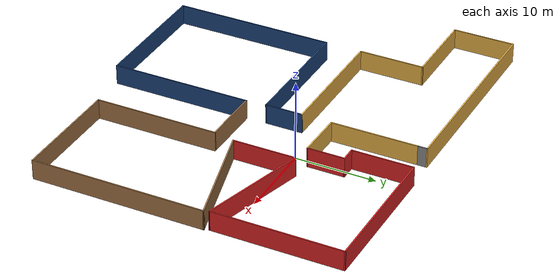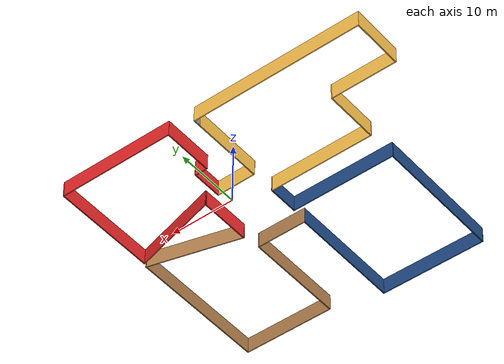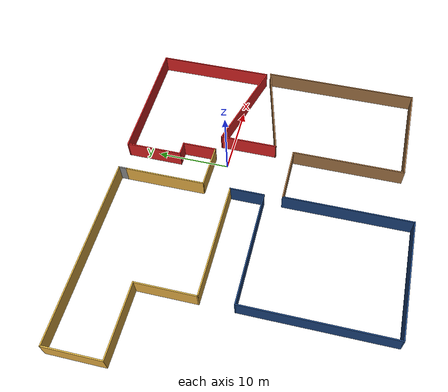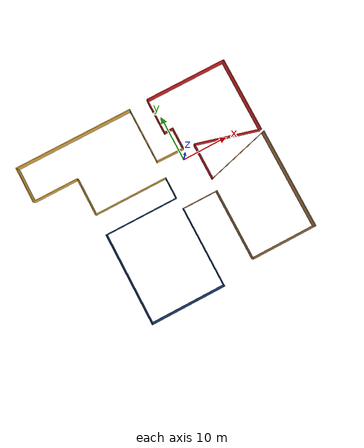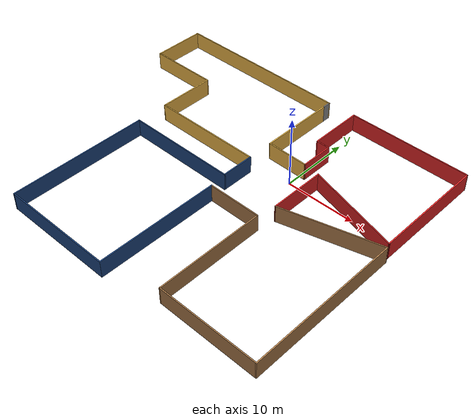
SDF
<?xml version='1.0'?>
<sdf version='1.6'>
  <model name='uav_rooms'>
    <pose frame=''>-7.00165 -6.06636 0 0 -0 0</pose>
    <link name='Wall_10'>
      <collision name='Wall_10_Collision'>
        <geometry>
          <box>
            <size>16.2501 0.15 2.5</size>
          </box>
        </geometry>
        <pose frame=''>0 0 1.25 0 -0 0</pose>
      </collision>
      <visual name='Wall_10_Visual'>
        <pose frame=''>0 0 1.25 0 -0 0</pose>
        <geometry>
          <box>
            <size>16.2501 0.15 2.5</size>
          </box>
        </geometry>
        <material>
          <script>
            <uri>file://media/materials/scripts/gazebo.material</uri>
            <name>Gazebo/Grey</name>
          </script>
          <ambient>0.12549 0.290196 0.529412 1</ambient>
        </material>
        <meta>
          <layer>0</layer>
        </meta>
      </visual>
      <pose frame=''>-5.93339 -20.1578 0 0 -0 2.3e-05</pose>
    </link>
    <link name='Wall_11'>
      <collision name='Wall_11_Collision'>
        <geometry>
          <box>
            <size>17.4996 0.15 2.5</size>
          </box>
        </geometry>
        <pose frame=''>0 0 1.25 0 -0 0</pose>
      </collision>
      <visual name='Wall_11_Visual'>
        <pose frame=''>0 0 1.25 0 -0 0</pose>
        <geometry>
          <box>
            <size>17.4996 0.15 2.5</size>
          </box>
        </geometry>
        <material>
          <script>
            <uri>file://media/materials/scripts/gazebo.material</uri>
            <name>Gazebo/Grey</name>
          </script>
          <ambient>0.12549 0.290196 0.529412 1</ambient>
        </material>
        <meta>
          <layer>0</layer>
        </meta>
      </visual>
      <pose frame=''>2.11665 -11.4826 0 0 -0 1.5708</pose>
    </link>
    <link name='Wall_12'>
      <collision name='Wall_12_Collision'>
        <geometry>
          <box>
            <size>7.75 0.15 2.5</size>
          </box>
        </geometry>
        <pose frame=''>0 0 1.25 0 -0 0</pose>
      </collision>
      <visual name='Wall_12_Visual'>
        <pose frame=''>0 0 1.25 0 -0 0</pose>
        <geometry>
          <box>
            <size>7.75 0.15 2.5</size>
          </box>
        </geometry>
        <material>
          <script>
            <uri>file://media/materials/scripts/gazebo.material</uri>
            <name>Gazebo/Wood</name>
          </script>
          <ambient>0.447059 0.623529 0.811765 1</ambient>
        </material>
        <meta>
          <layer>0</layer>
        </meta>
      </visual>
      <pose frame=''>5.91665 -2.80764 0 0 -0 0</pose>
    </link>
    <link name='Wall_13'>
      <collision name='Wall_13_Collision'>
        <geometry>
          <box>
            <size>15.5 0.15 2.5</size>
          </box>
        </geometry>
        <pose frame=''>0 0 1.25 0 -0 0</pose>
      </collision>
      <visual name='Wall_13_Visual'>
        <pose frame=''>0 0 1.25 0 -0 0</pose>
        <geometry>
          <box>
            <size>15.5 0.15 2.5</size>
          </box>
        </geometry>
        <material>
          <script>
            <uri>file://media/materials/scripts/gazebo.material</uri>
            <name>Gazebo/Wood</name>
          </script>
          <ambient>0.447059 0.623529 0.811765 1</ambient>
        </material>
        <meta>
          <layer>0</layer>
        </meta>
      </visual>
      <pose frame=''>9.71665 -10.4826 0 0 -0 -1.5708</pose>
    </link>
    <link name='Wall_14'>
      <collision name='Wall_14_Collision'>
        <geometry>
          <box>
            <size>14.25 0.15 2.5</size>
          </box>
        </geometry>
        <pose frame=''>0 0 1.25 0 -0 0</pose>
      </collision>
      <visual name='Wall_14_Visual'>
        <pose frame=''>0 0 1.25 0 -0 0</pose>
        <geometry>
          <box>
            <size>14.25 0.15 2.5</size>
          </box>
        </geometry>
        <material>
          <script>
            <uri>file://media/materials/scripts/gazebo.material</uri>
            <name>Gazebo/Wood</name>
          </script>
          <ambient>0.447059 0.623529 0.811765 1</ambient>
        </material>
        <meta>
          <layer>0</layer>
        </meta>
      </visual>
      <pose frame=''>16.7667 -18.1576 0 0 -0 0</pose>
    </link>
    <link name='Wall_15'>
      <collision name='Wall_15_Collision'>
        <geometry>
          <box>
            <size>21.75 0.15 2.5</size>
          </box>
        </geometry>
        <pose frame=''>0 0 1.25 0 -0 0</pose>
      </collision>
      <visual name='Wall_15_Visual'>
        <pose frame=''>0 0 1.25 0 -0 0</pose>
        <geometry>
          <box>
            <size>21.75 0.15 2.5</size>
          </box>
        </geometry>
        <material>
          <script>
            <uri>file://media/materials/scripts/gazebo.material</uri>
            <name>Gazebo/Wood</name>
          </script>
          <ambient>0.760784 0.662745 0.627451 1</ambient>
        </material>
        <meta>
          <layer>0</layer>
        </meta>
      </visual>
      <pose frame=''>23.8167 -7.35764 0 0 -0 1.5708</pose>
    </link>
    <link name='Wall_16'>
      <collision name='Wall_16_Collision'>
        <geometry>
          <box>
            <size>14.25 0.15 2.5</size>
          </box>
        </geometry>
        <pose frame=''>0 0 1.25 0 -0 0</pose>
      </collision>
      <visual name='Wall_16_Visual'>
        <pose frame=''>0 0 1.25 0 -0 0</pose>
        <geometry>
          <box>
            <size>14.25 0.15 2.5</size>
          </box>
        </geometry>
        <material>
          <script>
            <uri>file://media/materials/scripts/gazebo.material</uri>
            <name>Gazebo/Wood</name>
          </script>
          <ambient>0.760784 0.662745 0.627451 1</ambient>
        </material>
        <meta>
          <layer>0</layer>
        </meta>
      </visual>
      <pose frame=''>17.0068 1.6175 0 0 -0 -2.87977</pose>
    </link>
    <link name='Wall_17'>
      <collision name='Wall_17_Collision'>
        <geometry>
          <box>
            <size>8 0.15 2.5</size>
          </box>
        </geometry>
        <pose frame=''>0 0 1.25 0 -0 0</pose>
      </collision>
      <visual name='Wall_17_Visual'>
        <pose frame=''>0 0 1.25 0 -0 0</pose>
        <geometry>
          <box>
            <size>8 0.15 2.5</size>
          </box>
        </geometry>
        <material>
          <script>
            <uri>file://media/materials/scripts/gazebo.material</uri>
            <name>Gazebo/Grey</name>
          </script>
          <ambient>0.937255 0.160784 0.160784 1</ambient>
        </material>
        <meta>
          <layer>0</layer>
        </meta>
      </visual>
      <pose frame=''>10.197 3.71765 0 0 -0 1.5708</pose>
    </link>
    <link name='Wall_18'>
      <collision name='Wall_18_Collision'>
        <geometry>
          <box>
            <size>14 0.15 2.5</size>
          </box>
        </geometry>
        <pose frame=''>0 0 1.25 0 -0 0</pose>
      </collision>
      <visual name='Wall_18_Visual'>
        <pose frame=''>0 0 1.25 0 -0 0</pose>
        <geometry>
          <box>
            <size>14 0.15 2.5</size>
          </box>
        </geometry>
        <material>
          <script>
            <uri>file://media/materials/scripts/gazebo.material</uri>
            <name>Gazebo/Grey</name>
          </script>
          <ambient>0.937255 0.160784 0.160784 1</ambient>
        </material>
        <meta>
          <layer>0</layer>
        </meta>
      </visual>
      <pose frame=''>16.8861 5.85033 0 0 -0 -0.261799</pose>
    </link>
    <link name='Wall_19'>
      <collision name='Wall_19_Collision'>
        <geometry>
          <box>
            <size>16.25 0.15 2.5</size>
          </box>
        </geometry>
        <pose frame=''>0 0 1.25 0 -0 0</pose>
      </collision>
      <visual name='Wall_19_Visual'>
        <pose frame=''>0 0 1.25 0 -0 0</pose>
        <geometry>
          <box>
            <size>16.25 0.15 2.5</size>
          </box>
        </geometry>
        <material>
          <script>
            <uri>file://media/materials/scripts/gazebo.material</uri>
            <name>Gazebo/Grey</name>
          </script>
          <ambient>0.937255 0.160784 0.160784 1</ambient>
        </material>
        <meta>
          <layer>0</layer>
        </meta>
      </visual>
      <pose frame=''>23.5751 12.108 0 0 -0 1.5708</pose>
    </link>
    <link name='Wall_22'>
      <collision name='Wall_22_Collision'>
        <geometry>
          <box>
            <size>17.75 0.15 2.5</size>
          </box>
        </geometry>
        <pose frame=''>0 0 1.25 0 -0 0</pose>
      </collision>
      <visual name='Wall_22_Visual'>
        <pose frame=''>0 0 1.25 0 -0 0</pose>
        <geometry>
          <box>
            <size>17.75 0.15 2.5</size>
          </box>
        </geometry>
        <material>
          <script>
            <uri>file://media/materials/scripts/gazebo.material</uri>
            <name>Gazebo/Grey</name>
          </script>
          <ambient>0.937255 0.160784 0.160784 1</ambient>
        </material>
        <meta>
          <layer>0</layer>
        </meta>
      </visual>
      <pose frame=''>14.7751 20.158 0 0 -0 3.14159</pose>
    </link>
    <link name='Wall_23'>
      <collision name='Wall_23_Collision'>
        <geometry>
          <box>
            <size>7.75 0.15 2.5</size>
          </box>
        </geometry>
        <pose frame=''>0 0 1.25 0 -0 0</pose>
      </collision>
      <visual name='Wall_23_Visual'>
        <pose frame=''>0 0 1.25 0 -0 0</pose>
        <geometry>
          <box>
            <size>7.75 0.15 2.5</size>
          </box>
        </geometry>
        <material>
          <script>
            <uri>file://media/materials/scripts/gazebo.material</uri>
            <name>Gazebo/Grey</name>
          </script>
          <ambient>0.937255 0.160784 0.160784 1</ambient>
        </material>
        <meta>
          <layer>0</layer>
        </meta>
      </visual>
      <pose frame=''>5.97509 16.358 0 0 -0 -1.5708</pose>
    </link>
    <link name='Wall_24'>
      <collision name='Wall_24_Collision'>
        <geometry>
          <box>
            <size>2 0.15 2.5</size>
          </box>
        </geometry>
        <pose frame=''>0 0 1.25 0 -0 0</pose>
      </collision>
      <visual name='Wall_24_Visual'>
        <pose frame=''>0 0 1.25 0 -0 0</pose>
        <geometry>
          <box>
            <size>2 0.15 2.5</size>
          </box>
        </geometry>
        <material>
          <script>
            <uri>file://media/materials/scripts/gazebo.material</uri>
            <name>Gazebo/Grey</name>
          </script>
          <ambient>0.937255 0.160784 0.160784 1</ambient>
        </material>
        <meta>
          <layer>0</layer>
        </meta>
      </visual>
      <pose frame=''>6.90009 12.558 0 0 -0 0</pose>
    </link>
    <link name='Wall_25'>
      <collision name='Wall_25_Collision'>
        <geometry>
          <box>
            <size>4.75 0.15 2.5</size>
          </box>
        </geometry>
        <pose frame=''>0 0 1.25 0 -0 0</pose>
      </collision>
      <visual name='Wall_25_Visual'>
        <pose frame=''>0 0 1.25 0 -0 0</pose>
        <geometry>
          <box>
            <size>4.75 0.15 2.5</size>
          </box>
        </geometry>
        <material>
          <script>
            <uri>file://media/materials/scripts/gazebo.material</uri>
            <name>Gazebo/Grey</name>
          </script>
          <ambient>0.937255 0.160784 0.160784 1</ambient>
        </material>
        <meta>
          <layer>0</layer>
        </meta>
      </visual>
      <pose frame=''>7.82509 10.258 0 0 -0 -1.5708</pose>
    </link>
    <link name='Wall_26'>
      <collision name='Wall_26_Collision'>
        <geometry>
          <box>
            <size>6.10911 0.15 2.5</size>
          </box>
        </geometry>
        <pose frame=''>0 0 1.25 0 -0 0</pose>
      </collision>
      <visual name='Wall_26_Visual'>
        <pose frame=''>0 0 1.25 0 -0 0</pose>
        <geometry>
          <box>
            <size>6.10911 0.15 2.5</size>
          </box>
        </geometry>
        <material>
          <script>
            <uri>file://media/materials/scripts/gazebo.material</uri>
            <name>Gazebo/Grey</name>
          </script>
          <ambient>1 0.764706 0.305882 1</ambient>
        </material>
        <meta>
          <layer>0</layer>
        </meta>
      </visual>
      <pose frame=''>4.84583 8 0 0 -0 3.1275</pose>
    </link>
    <link name='Wall_28'>
      <collision name='Wall_28_Collision'>
        <geometry>
          <box>
            <size>8.25 0.15 2.5</size>
          </box>
        </geometry>
        <pose frame=''>0 0 1.25 0 -0 0</pose>
      </collision>
      <visual name='Wall_28_Visual'>
        <pose frame=''>0 0 1.25 0 -0 0</pose>
        <geometry>
          <box>
            <size>8.25 0.15 2.5</size>
          </box>
        </geometry>
        <material>
          <script>
            <uri>file://media/materials/scripts/gazebo.material</uri>
            <name>Gazebo/Grey</name>
          </script>
          <ambient>1 0.764706 0.305882 1</ambient>
        </material>
        <meta>
          <layer>0</layer>
        </meta>
      </visual>
      <pose frame=''>-13.9834 8.342 0 0 -0 1.5708</pose>
    </link>
    <link name='Wall_29'>
      <collision name='Wall_29_Collision'>
        <geometry>
          <box>
            <size>10 0.15 2.5</size>
          </box>
        </geometry>
        <pose frame=''>0 0 1.25 0 -0 0</pose>
      </collision>
      <visual name='Wall_29_Visual'>
        <pose frame=''>0 0 1.25 0 -0 0</pose>
        <geometry>
          <box>
            <size>10 0.15 2.5</size>
          </box>
        </geometry>
        <material>
          <script>
            <uri>file://media/materials/scripts/gazebo.material</uri>
            <name>Gazebo/Grey</name>
          </script>
          <ambient>1 0.764706 0.305882 1</ambient>
        </material>
        <meta>
          <layer>0</layer>
        </meta>
      </visual>
      <pose frame=''>-18.9084 12.392 0 0 -0 3.14159</pose>
    </link>
    <link name='Wall_3'>
      <collision name='Wall_3_Collision'>
        <geometry>
          <box>
            <size>11 0.15 2.5</size>
          </box>
        </geometry>
        <pose frame=''>0 0 1.25 0 -0 0</pose>
      </collision>
      <visual name='Wall_3_Visual'>
        <pose frame=''>0 0 1.25 0 -0 0</pose>
        <geometry>
          <box>
            <size>11 0.15 2.5</size>
          </box>
        </geometry>
        <material>
          <script>
            <uri>file://media/materials/scripts/gazebo.material</uri>
            <name>Gazebo/Grey</name>
          </script>
          <ambient>1 0.764706 0.305882 1</ambient>
        </material>
        <meta>
          <layer>0</layer>
        </meta>
      </visual>
      <pose frame=''>1.86657 13.467 0 0 -0 1.5708</pose>
    </link>
    <link name='Wall_30'>
      <collision name='Wall_30_Collision'>
        <geometry>
          <box>
            <size>7.75 0.15 2.5</size>
          </box>
        </geometry>
        <pose frame=''>0 0 1.25 0 -0 0</pose>
      </collision>
      <visual name='Wall_30_Visual'>
        <pose frame=''>0 0 1.25 0 -0 0</pose>
        <geometry>
          <box>
            <size>7.75 0.15 2.5</size>
          </box>
        </geometry>
        <material>
          <script>
            <uri>file://media/materials/scripts/gazebo.material</uri>
            <name>Gazebo/Grey</name>
          </script>
          <ambient>1 0.764706 0.305882 1</ambient>
        </material>
        <meta>
          <layer>0</layer>
        </meta>
      </visual>
      <pose frame=''>-23.8334 16.1922 0 0 -0 1.57079</pose>
    </link>
    <link name='Wall_31'>
      <collision name='Wall_31_Collision'>
        <geometry>
          <box>
            <size>25.85 0.15 2.5</size>
          </box>
        </geometry>
        <pose frame=''>0 0 1.25 0 -0 0</pose>
      </collision>
      <visual name='Wall_31_Visual'>
        <pose frame=''>0 0 1.25 0 -0 0</pose>
        <geometry>
          <box>
            <size>25.85 0.15 2.5</size>
          </box>
        </geometry>
        <material>
          <script>
            <uri>file://media/materials/scripts/gazebo.material</uri>
            <name>Gazebo/Grey</name>
          </script>
          <ambient>1 0.764706 0.305882 1</ambient>
        </material>
        <meta>
          <layer>0</layer>
        </meta>
      </visual>
      <pose frame=''>-10.9833 19.9924 0 0 -0 0</pose>
    </link>
    <link name='Wall_32'>
      <collision name='Wall_32_Collision'>
        <geometry>
          <box>
            <size>1.25036 0.15 2.5</size>
          </box>
        </geometry>
        <pose frame=''>0 0 1.25 0 -0 0</pose>
      </collision>
      <visual name='Wall_32_Visual'>
        <pose frame=''>0 0 1.25 0 -0 0</pose>
        <geometry>
          <box>
            <size>1.25036 0.15 2.5</size>
          </box>
        </geometry>
        <material>
          <script>
            <uri>file://media/materials/scripts/gazebo.material</uri>
            <name>Gazebo/Grey</name>
          </script>
          <ambient>1 1 1 1</ambient>
        </material>
        <meta>
          <layer>0</layer>
        </meta>
      </visual>
      <pose frame=''>1.86661 19.4422 0 0 -0 -1.57087</pose>
    </link>
    <link name='Wall_6'>
      <collision name='Wall_6_Collision'>
        <geometry>
          <box>
            <size>16 0.15 2.5</size>
          </box>
        </geometry>
        <pose frame=''>0 0 1.25 0 -0 0</pose>
      </collision>
      <visual name='Wall_6_Visual'>
        <pose frame=''>0 0 1.25 0 -0 0</pose>
        <geometry>
          <box>
            <size>16 0.15 2.5</size>
          </box>
        </geometry>
        <material>
          <script>
            <uri>file://media/materials/scripts/gazebo.material</uri>
            <name>Gazebo/Grey</name>
          </script>
          <ambient>1 0.764706 0.305882 1</ambient>
        </material>
        <meta>
          <layer>0</layer>
        </meta>
      </visual>
      <pose frame=''>-6.05843 4.292 0 0 -0 0</pose>
    </link>
    <link name='Wall_7'>
      <collision name='Wall_7_Collision'>
        <geometry>
          <box>
            <size>4.75 0.15 2.5</size>
          </box>
        </geometry>
        <pose frame=''>0 0 1.25 0 -0 0</pose>
      </collision>
      <visual name='Wall_7_Visual'>
        <pose frame=''>0 0 1.25 0 -0 0</pose>
        <geometry>
          <box>
            <size>4.75 0.15 2.5</size>
          </box>
        </geometry>
        <material>
          <script>
            <uri>file://media/materials/scripts/gazebo.material</uri>
            <name>Gazebo/Grey</name>
          </script>
          <ambient>0.12549 0.290196 0.529412 1</ambient>
        </material>
        <meta>
          <layer>0</layer>
        </meta>
      </visual>
      <pose frame=''>1.86657 1.992 0 0 -0 -1.5708</pose>
    </link>
    <link name='Wall_8'>
      <collision name='Wall_8_Collision'>
        <geometry>
          <box>
            <size>16 0.15 2.5</size>
          </box>
        </geometry>
        <pose frame=''>0 0 1.25 0 -0 0</pose>
      </collision>
      <visual name='Wall_8_Visual'>
        <pose frame=''>0 0 1.25 0 -0 0</pose>
        <geometry>
          <box>
            <size>16 0.15 2.5</size>
          </box>
        </geometry>
        <material>
          <script>
            <uri>file://media/materials/scripts/gazebo.material</uri>
            <name>Gazebo/Grey</name>
          </script>
          <ambient>0.12549 0.290196 0.529412 1</ambient>
        </material>
        <meta>
          <layer>0</layer>
        </meta>
      </visual>
      <pose frame=''>-6.05843 -0.308003 0 0 -0 3.14159</pose>
    </link>
    <link name='Wall_9'>
      <collision name='Wall_9_Collision'>
        <geometry>
          <box>
            <size>20 0.15 2.5</size>
          </box>
        </geometry>
        <pose frame=''>0 0 1.25 0 -0 0</pose>
      </collision>
      <visual name='Wall_9_Visual'>
        <pose frame=''>0 0 1.25 0 -0 0</pose>
        <geometry>
          <box>
            <size>20 0.15 2.5</size>
          </box>
        </geometry>
        <material>
          <script>
            <uri>file://media/materials/scripts/gazebo.material</uri>
            <name>Gazebo/Grey</name>
          </script>
          <ambient>0.12549 0.290196 0.529412 1</ambient>
        </material>
        <meta>
          <layer>0</layer>
        </meta>
      </visual>
      <pose frame=''>-13.9834 -10.233 0 0 -0 -1.5708</pose>
    </link>
    <static>1</static>
  </model>
</sdf>
